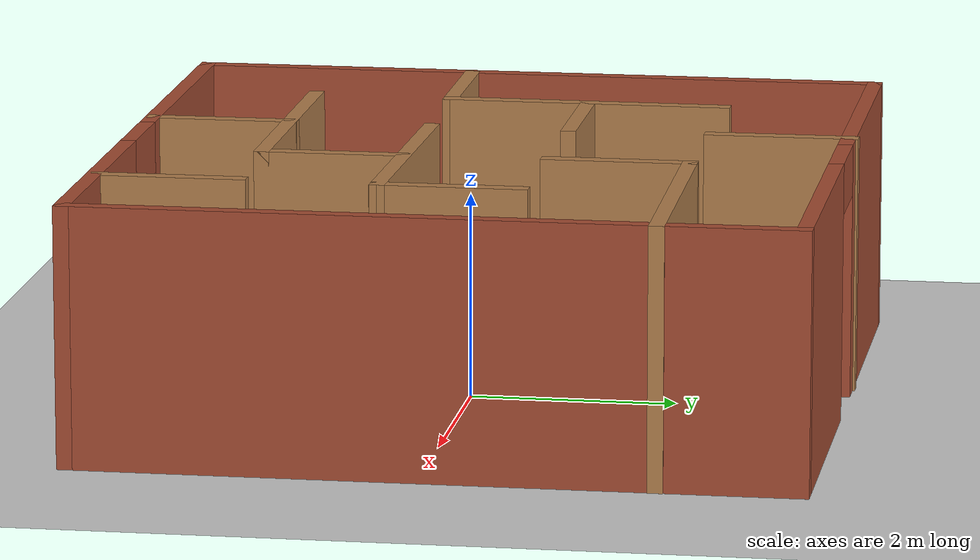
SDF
<sdf version="1.7">
 <world name="default">
  <light name="sun" type="directional">
   <pose>0 0 10 0 -0 0</pose>
   <diffuse>0.8 0.8 0.8 1</diffuse>
   <specular>0.2 0.2 0.2 1</specular>
   <attenuation>
    <range>1000</range>
    <constant>0.9</constant>
    <linear>0.01</linear>
    <quadratic>0.001</quadratic>
   </attenuation>
   <direction>-0.5 0.1 -0.9</direction>
   <spot><inner_angle>0</inner_angle><outer_angle>0</outer_angle><falloff>0</falloff></spot>
  </light>
  <model name="ground_plane">
   <static>1</static>
   <link name="link">
    <collision name="collision">
     <geometry><plane><normal>0 0 1</normal><size>100 100</size></plane></geometry>
     <surface><friction><ode><mu>100</mu><mu2>50</mu2></ode></friction></surface>
    </collision>
    <visual name="visual">
     <cast_shadows>0</cast_shadows>
     <geometry><plane><normal>0 0 1</normal><size>100 100</size></plane></geometry>
     <material>
      <script><uri>file://media/materials/scripts/gazebo.material</uri><name>Gazebo/Grey</name></script>
     </material>
    </visual>
   </link>
  </model>
  <gravity>0 0 -9.8</gravity>
  <magnetic_field>6e-06 2.3e-05 -4.2e-05</magnetic_field>
  <atmosphere type="adiabatic"/>
  <physics type="ode">
   <max_step_size>0.001</max_step_size>
   <real_time_factor>1</real_time_factor>
   <real_time_update_rate>1000</real_time_update_rate>
  </physics>
  <scene><ambient>0.4 0.4 0.4 1</ambient><background>0.7 0.7 0.7 1</background><shadows>1</shadows></scene>
  <audio><device>default</device></audio>
  <spherical_coordinates>
   <surface_model>EARTH_WGS84</surface_model>
   <latitude_deg>0</latitude_deg>
   <longitude_deg>0</longitude_deg>
   <elevation>0</elevation>
   <heading_deg>0</heading_deg>
  </spherical_coordinates>
  <model name="my_maze">
   <pose>-0.144006 0.146055 0 0 -0 0</pose>
   <link name="Wall_0">
    <pose>-0.005183 3.4134 0 0 -0 0</pose>
    <visual name="Wall_0_Visual_0">
     <pose>-1.92809 0 1.25 0 -0 0</pose>
     <geometry><box><size>3.14381 0.15 2.5</size></box></geometry>
     <material>
      <script><uri>file://media/materials/scripts/gazebo.material</uri><name>Gazebo/Bricks</name></script>
      <ambient>1 1 1 1</ambient>
     </material>
     <meta><layer>0</layer></meta>
    </visual>
    <collision name="Wall_0_Collision_0">
     <geometry><box><size>3.14381 0.15 2.5</size></box></geometry>
     <pose>-1.92809 0 1.25 0 -0 0</pose>
    </collision>
    <visual name="Wall_0_Visual_1">
     <pose>2.02191 0 1.25 0 -0 0</pose>
     <geometry><box><size>2.95619 0.15 2.5</size></box></geometry>
     <material>
      <script><uri>file://media/materials/scripts/gazebo.material</uri><name>Gazebo/Bricks</name></script>
      <ambient>1 1 1 1</ambient>
     </material>
     <meta><layer>0</layer></meta>
    </visual>
    <collision name="Wall_0_Collision_1">
     <geometry><box><size>2.95619 0.15 2.5</size></box></geometry>
     <pose>2.02191 0 1.25 0 -0 0</pose>
    </collision>
    <visual name="Wall_0_Visual_2">
     <pose>0.093814 0 2.25 0 -0 0</pose>
     <geometry><box><size>0.9 0.15 0.5</size></box></geometry>
     <material>
      <script><uri>file://media/materials/scripts/gazebo.material</uri><name>Gazebo/Bricks</name></script>
      <ambient>1 1 1 1</ambient>
     </material>
     <meta><layer>0</layer></meta>
    </visual>
    <collision name="Wall_0_Collision_2">
     <geometry><box><size>0.9 0.15 0.5</size></box></geometry>
     <pose>0.093814 0 2.25 0 -0 0</pose>
    </collision>
   </link>
   <link name="Wall_1">
    <collision name="Wall_1_Collision">
     <geometry><box><size>7 0.15 2.5</size></box></geometry>
     <pose>0 0 1.25 0 -0 0</pose>
    </collision>
    <visual name="Wall_1_Visual">
     <pose>0 0 1.25 0 -0 0</pose>
     <geometry><box><size>7 0.15 2.5</size></box></geometry>
     <material>
      <script><uri>file://media/materials/scripts/gazebo.material</uri><name>Gazebo/Bricks</name></script>
      <ambient>1 1 1 1</ambient>
     </material>
     <meta><layer>0</layer></meta>
    </visual>
    <pose>3.41982 -0.011597 0 0 -0 -1.5708</pose>
   </link>
   <link name="Wall_10">
    <collision name="Wall_10_Collision">
     <geometry><box><size>1.5 0.15 2.5</size></box></geometry>
     <pose>0 0 1.25 0 -0 0</pose>
    </collision>
    <visual name="Wall_10_Visual">
     <pose>0 0 1.25 0 -0 0</pose>
     <geometry><box><size>1.5 0.15 2.5</size></box></geometry>
     <material>
      <script><uri>file://media/materials/scripts/gazebo.material</uri><name>Gazebo/Wood</name></script>
      <ambient>1 1 1 1</ambient>
     </material>
     <meta><layer>0</layer></meta>
    </visual>
    <pose>2.03003 -2.72702 0 0 -0 1.5708</pose>
   </link>
   <link name="Wall_12">
    <collision name="Wall_12_Collision">
     <geometry><box><size>2.91393 0.15 2.5</size></box></geometry>
     <pose>0 0 1.25 0 -0 0</pose>
    </collision>
    <visual name="Wall_12_Visual">
     <pose>0 0 1.25 0 -0 0</pose>
     <geometry><box><size>2.91393 0.15 2.5</size></box></geometry>
     <material>
      <script><uri>file://media/materials/scripts/gazebo.material</uri><name>Gazebo/Wood</name></script>
      <ambient>1 1 1 1</ambient>
     </material>
     <meta><layer>0</layer></meta>
    </visual>
    <pose>0.683294 -0.699802 0 0 -0 -0.018985</pose>
   </link>
   <link name="Wall_13">
    <collision name="Wall_13_Collision">
     <geometry><box><size>1.5 0.15 2.5</size></box></geometry>
     <pose>0 0 1.25 0 -0 0</pose>
    </collision>
    <visual name="Wall_13_Visual">
     <pose>0 0 1.25 0 -0 0</pose>
     <geometry><box><size>1.5 0.15 2.5</size></box></geometry>
     <material>
      <script><uri>file://media/materials/scripts/gazebo.material</uri><name>Gazebo/Wood</name></script>
      <ambient>1 1 1 1</ambient>
     </material>
     <meta><layer>0</layer></meta>
    </visual>
    <pose>2.06501 -0.051037 0 0 -0 1.5708</pose>
   </link>
   <link name="Wall_15">
    <collision name="Wall_15_Collision">
     <geometry><box><size>2.89616 0.15 2.5</size></box></geometry>
     <pose>0 0 1.25 0 -0 0</pose>
    </collision>
    <visual name="Wall_15_Visual">
     <pose>0 0 1.25 0 -0 0</pose>
     <geometry><box><size>2.89616 0.15 2.5</size></box></geometry>
     <material>
      <script><uri>file://media/materials/scripts/gazebo.material</uri><name>Gazebo/Wood</name></script>
      <ambient>1 1 1 1</ambient>
     </material>
     <meta><layer>0</layer></meta>
    </visual>
    <pose>2.05626 2.05488 0 0 -0 -3.12885</pose>
   </link>
   <link name="Wall_16">
    <collision name="Wall_16_Collision">
     <geometry><box><size>1.5 0.15 2.5</size></box></geometry>
     <pose>0 0 1.25 0 -0 0</pose>
    </collision>
    <visual name="Wall_16_Visual">
     <pose>0 0 1.25 0 -0 0</pose>
     <geometry><box><size>1.5 0.15 2.5</size></box></geometry>
     <material>
      <script><uri>file://media/materials/scripts/gazebo.material</uri><name>Gazebo/Wood</name></script>
      <ambient>1 1 1 1</ambient>
     </material>
     <meta><layer>0</layer></meta>
    </visual>
    <pose>0.683294 1.36239 0 0 -0 -1.5708</pose>
   </link>
   <link name="Wall_18">
    <collision name="Wall_18_Collision">
     <geometry><box><size>1.5 0.15 2.5</size></box></geometry>
     <pose>0 0 1.25 0 -0 0</pose>
    </collision>
    <visual name="Wall_18_Visual">
     <pose>0 0 1.25 0 -0 0</pose>
     <geometry><box><size>1.5 0.15 2.5</size></box></geometry>
     <material>
      <script><uri>file://media/materials/scripts/gazebo.material</uri><name>Gazebo/Wood</name></script>
      <ambient>1 1 1 1</ambient>
     </material>
     <meta><layer>0</layer></meta>
    </visual>
    <pose>-2.71689 -0.691057 0 0 -0 0</pose>
   </link>
   <link name="Wall_19">
    <collision name="Wall_19_Collision">
     <geometry><box><size>2.87863 0.15 2.5</size></box></geometry>
     <pose>0 0 1.25 0 -0 0</pose>
    </collision>
    <visual name="Wall_19_Visual">
     <pose>0 0 1.25 0 -0 0</pose>
     <geometry><box><size>2.87863 0.15 2.5</size></box></geometry>
     <material>
      <script><uri>file://media/materials/scripts/gazebo.material</uri><name>Gazebo/Wood</name></script>
      <ambient>1 1 1 1</ambient>
     </material>
     <meta><layer>0</layer></meta>
    </visual>
    <pose>-2.03478 0.673168 0 0 -0 1.56558</pose>
   </link>
   <link name="Wall_2">
    <pose>-0.005183 -3.4366 0 0 -0 3.14159</pose>
    <visual name="Wall_2_Visual_0">
     <pose>-1.99567 0 1.25 0 -0 0</pose>
     <geometry><box><size>3.00866 0.15 2.5</size></box></geometry>
     <material>
      <script><uri>file://media/materials/scripts/gazebo.material</uri><name>Gazebo/Bricks</name></script>
      <ambient>1 1 1 1</ambient>
     </material>
     <meta><layer>0</layer></meta>
    </visual>
    <collision name="Wall_2_Collision_0">
     <geometry><box><size>3.00866 0.15 2.5</size></box></geometry>
     <pose>-1.99567 0 1.25 0 -0 0</pose>
    </collision>
    <visual name="Wall_2_Visual_1">
     <pose>1.95433 0 1.25 0 -0 0</pose>
     <geometry><box><size>3.09134 0.15 2.5</size></box></geometry>
     <material>
      <script><uri>file://media/materials/scripts/gazebo.material</uri><name>Gazebo/Bricks</name></script>
      <ambient>1 1 1 1</ambient>
     </material>
     <meta><layer>0</layer></meta>
    </visual>
    <collision name="Wall_2_Collision_1">
     <geometry><box><size>3.09134 0.15 2.5</size></box></geometry>
     <pose>1.95433 0 1.25 0 -0 0</pose>
    </collision>
    <visual name="Wall_2_Visual_2">
     <pose>-0.041344 0 2.25 0 -0 0</pose>
     <geometry><box><size>0.9 0.15 0.5</size></box></geometry>
     <material>
      <script><uri>file://media/materials/scripts/gazebo.material</uri><name>Gazebo/Bricks</name></script>
      <ambient>1 1 1 1</ambient>
     </material>
     <meta><layer>0</layer></meta>
    </visual>
    <collision name="Wall_2_Collision_2">
     <geometry><box><size>0.9 0.15 0.5</size></box></geometry>
     <pose>-0.041344 0 2.25 0 -0 0</pose>
    </collision>
   </link>
   <link name="Wall_22">
    <collision name="Wall_22_Collision">
     <geometry><box><size>1.5 0.15 2.5</size></box></geometry>
     <pose>0 0 1.25 0 -0 0</pose>
    </collision>
    <visual name="Wall_22_Visual">
     <pose>0 0 1.25 0 -0 0</pose>
     <geometry><box><size>1.5 0.15 2.5</size></box></geometry>
     <material>
      <script><uri>file://media/materials/scripts/gazebo.material</uri><name>Gazebo/Wood</name></script>
      <ambient>1 1 1 1</ambient>
     </material>
     <meta><layer>0</layer></meta>
    </visual>
    <pose>-1.35267 0.690658 0 0 -0 0</pose>
   </link>
   <link name="Wall_24">
    <collision name="Wall_24_Collision">
     <geometry><box><size>1.5 0.15 2.5</size></box></geometry>
     <pose>0 0 1.25 0 -0 0</pose>
    </collision>
    <visual name="Wall_24_Visual">
     <pose>0 0 1.25 0 -0 0</pose>
     <geometry><box><size>1.5 0.15 2.5</size></box></geometry>
     <material>
      <script><uri>file://media/materials/scripts/gazebo.material</uri><name>Gazebo/Wood</name></script>
      <ambient>1 1 1 1</ambient>
     </material>
     <meta><layer>0</layer></meta>
    </visual>
    <pose>-0.698421 2.7616 0 0 -0 -1.5708</pose>
   </link>
   <link name="Wall_3">
    <collision name="Wall_3_Collision">
     <geometry><box><size>7 0.15 2.5</size></box></geometry>
     <pose>0 0 1.25 0 -0 0</pose>
    </collision>
    <visual name="Wall_3_Visual">
     <pose>0 0 1.25 0 -0 0</pose>
     <geometry><box><size>7 0.15 2.5</size></box></geometry>
     <material>
      <script><uri>file://media/materials/scripts/gazebo.material</uri><name>Gazebo/Bricks</name></script>
      <ambient>1 1 1 1</ambient>
     </material>
     <meta><layer>0</layer></meta>
    </visual>
    <pose>-3.43018 -0.011597 0 0 -0 1.5708</pose>
   </link>
   <link name="Wall_5">
    <collision name="Wall_5_Collision">
     <geometry><box><size>1.5 0.15 2.5</size></box></geometry>
     <pose>0 0 1.25 0 -0 0</pose>
    </collision>
    <visual name="Wall_5_Visual">
     <pose>0 0 1.25 0 -0 0</pose>
     <geometry><box><size>1.5 0.15 2.5</size></box></geometry>
     <material>
      <script><uri>file://media/materials/scripts/gazebo.material</uri><name>Gazebo/Wood</name></script>
      <ambient>1 1 1 1</ambient>
     </material>
     <meta><layer>0</layer></meta>
    </visual>
    <pose>-0.698421 -2.74451 0 0 -0 1.5708</pose>
   </link>
   <link name="Wall_7">
    <collision name="Wall_7_Collision">
     <geometry><box><size>3 0.15 2.5</size></box></geometry>
     <pose>0 0 1.25 0 -0 0</pose>
    </collision>
    <visual name="Wall_7_Visual">
     <pose>0 0 1.25 0 -0 0</pose>
     <geometry><box><size>3 0.15 2.5</size></box></geometry>
     <material>
      <script><uri>file://media/materials/scripts/gazebo.material</uri><name>Gazebo/Wood</name></script>
      <ambient>1 1 1 1</ambient>
     </material>
     <meta><layer>0</layer></meta>
    </visual>
    <pose>-0.690116 -2.07277 0 0 -0 0</pose>
   </link>
   <link name="Wall_8">
    <collision name="Wall_8_Collision">
     <geometry><box><size>1.5 0.15 2.5</size></box></geometry>
     <pose>0 0 1.25 0 -0 0</pose>
    </collision>
    <visual name="Wall_8_Visual">
     <pose>0 0 1.25 0 -0 0</pose>
     <geometry><box><size>1.5 0.15 2.5</size></box></geometry>
     <material>
      <script><uri>file://media/materials/scripts/gazebo.material</uri><name>Gazebo/Wood</name></script>
      <ambient>1 1 1 1</ambient>
     </material>
     <meta><layer>0</layer></meta>
    </visual>
    <pose>0.734884 -1.39777 0 0 -0 1.5708</pose>
   </link>
   <static>1</static>
  </model>
  <model name="bookshelf">
   <static>1</static>
   <link name="link">
    <inertial><mass>1</mass></inertial>
    <collision name="back">
     <pose>0 0.005 0.6 0 -0 0</pose>
     <geometry><box><size>0.9 0.01 1.2</size></box></geometry>
    </collision>
    <visual name="visual1">
     <pose>0 0.005 0.6 0 -0 0</pose>
     <geometry><box><size>0.9 0.01 1.2</size></box></geometry>
     <material>
      <script><uri>file://media/materials/scripts/gazebo.material</uri><name>Gazebo/Wood</name></script>
     </material>
    </visual>
    <collision name="left_side">
     <pose>0.45 -0.195 0.6 0 -0 0</pose>
     <geometry><box><size>0.02 0.4 1.2</size></box></geometry>
    </collision>
    <visual name="visual2">
     <pose>0.45 -0.195 0.6 0 -0 0</pose>
     <geometry><box><size>0.02 0.4 1.2</size></box></geometry>
     <material>
      <script><uri>file://media/materials/scripts/gazebo.material</uri><name>Gazebo/Wood</name></script>
     </material>
    </visual>
    <collision name="right_side">
     <pose>-0.45 -0.195 0.6 0 -0 0</pose>
     <geometry><box><size>0.02 0.4 1.2</size></box></geometry>
    </collision>
    <visual name="visual3">
     <pose>-0.45 -0.195 0.6 0 -0 0</pose>
     <geometry><box><size>0.02 0.4 1.2</size></box></geometry>
     <material>
      <script><uri>file://media/materials/scripts/gazebo.material</uri><name>Gazebo/Wood</name></script>
     </material>
    </visual>
    <collision name="bottom">
     <pose>0 -0.195 0.03 0 -0 0</pose>
     <geometry><box><size>0.88 0.4 0.06</size></box></geometry>
    </collision>
    <visual name="visual4">
     <pose>0 -0.195 0.03 0 -0 0</pose>
     <geometry><box><size>0.88 0.4 0.06</size></box></geometry>
     <material>
      <script><uri>file://media/materials/scripts/gazebo.material</uri><name>Gazebo/Wood</name></script>
     </material>
    </visual>
    <collision name="top">
     <pose>0 -0.195 1.19 0 -0 0</pose>
     <geometry><box><size>0.88 0.4 0.02</size></box></geometry>
    </collision>
    <visual name="visual5">
     <pose>0 -0.195 1.19 0 -0 0</pose>
     <geometry><box><size>0.88 0.4 0.02</size></box></geometry>
     <material>
      <script><uri>file://media/materials/scripts/gazebo.material</uri><name>Gazebo/Wood</name></script>
     </material>
    </visual>
    <collision name="low_shelf">
     <pose>0 -0.195 0.43 0 -0 0</pose>
     <geometry><box><size>0.88 0.4 0.02</size></box></geometry>
    </collision>
    <visual name="visual6">
     <pose>0 -0.195 0.43 0 -0 0</pose>
     <geometry><box><size>0.88 0.4 0.02</size></box></geometry>
     <material>
      <script><uri>file://media/materials/scripts/gazebo.material</uri><name>Gazebo/Wood</name></script>
     </material>
    </visual>
    <collision name="high_shelf">
     <pose>0 -0.195 0.8 0 -0 0</pose>
     <geometry><box><size>0.88 0.4 0.02</size></box></geometry>
    </collision>
    <visual name="visual7">
     <pose>0 -0.195 0.8 0 -0 0</pose>
     <geometry><box><size>0.88 0.4 0.02</size></box></geometry>
     <material>
      <script><uri>file://media/materials/scripts/gazebo.material</uri><name>Gazebo/Wood</name></script>
     </material>
    </visual>
   </link>
   <pose>1.08977 2.09846 0 0 -0 0</pose>
  </model>
 </world>
</sdf>
